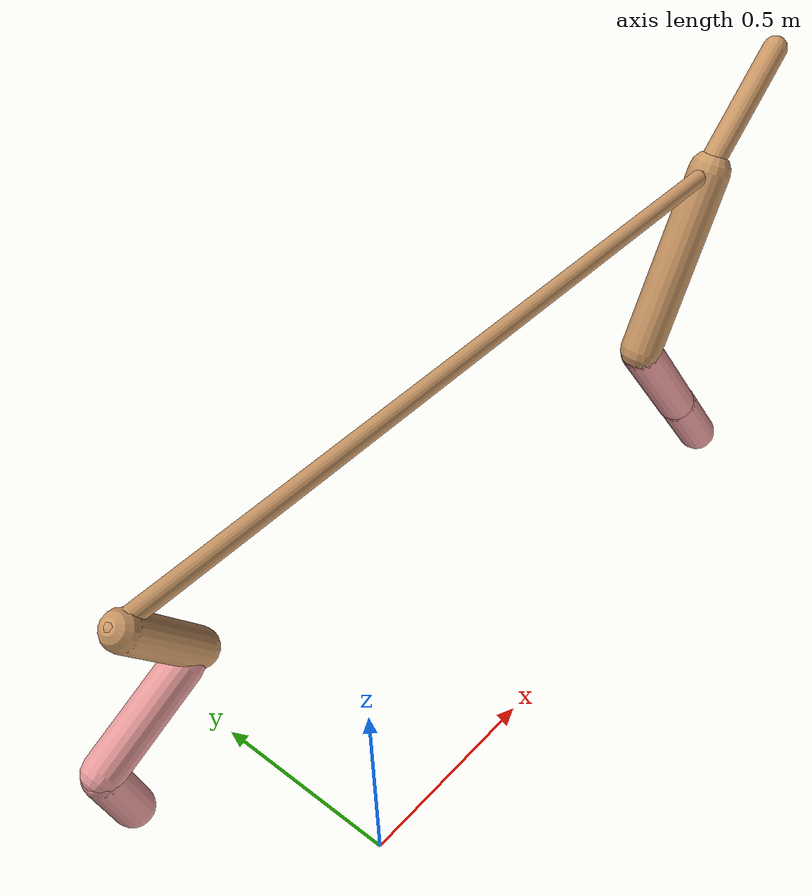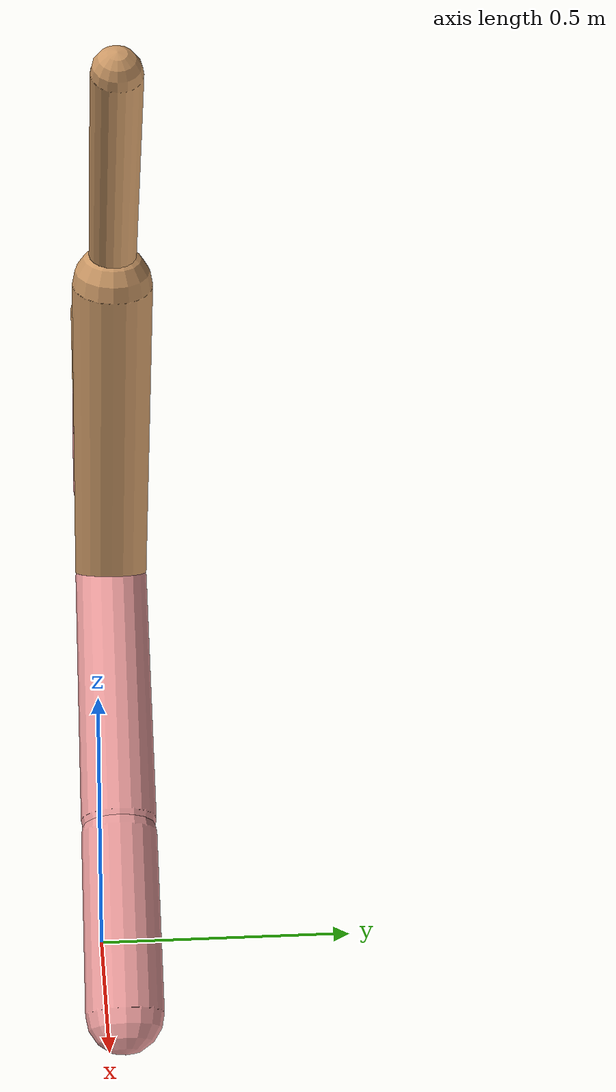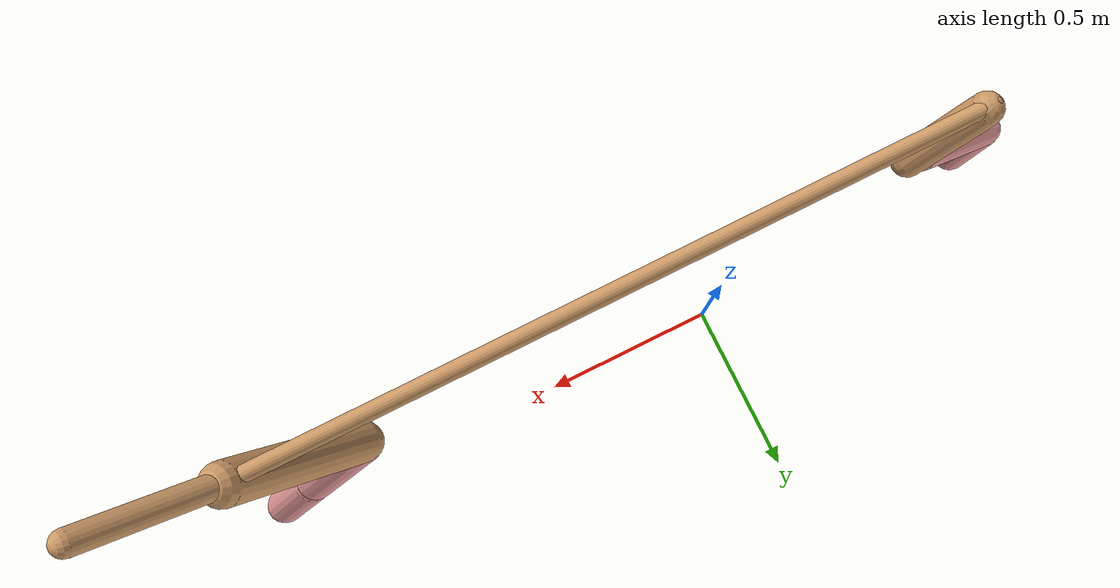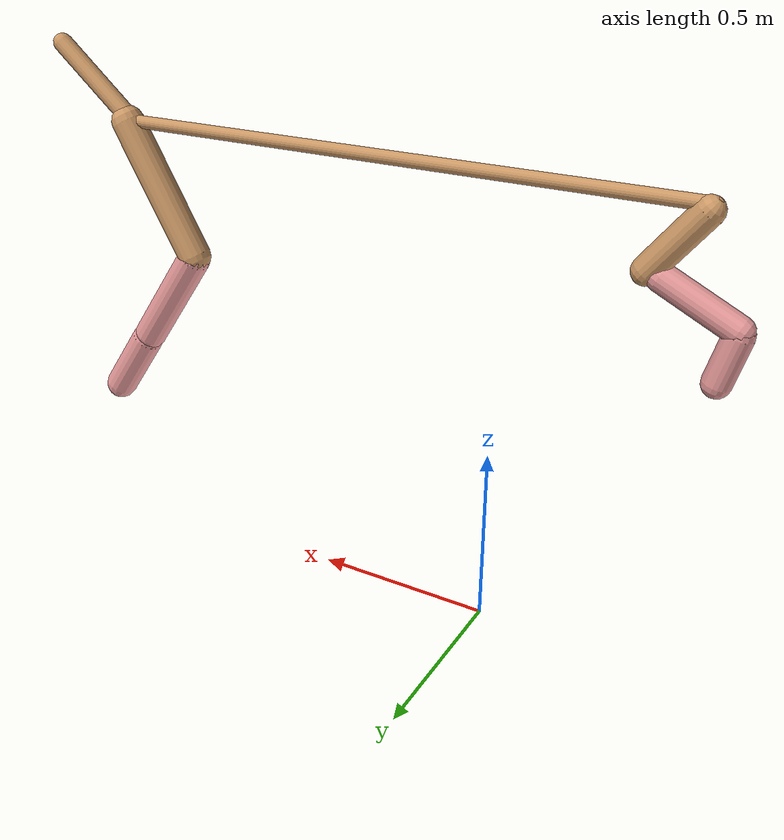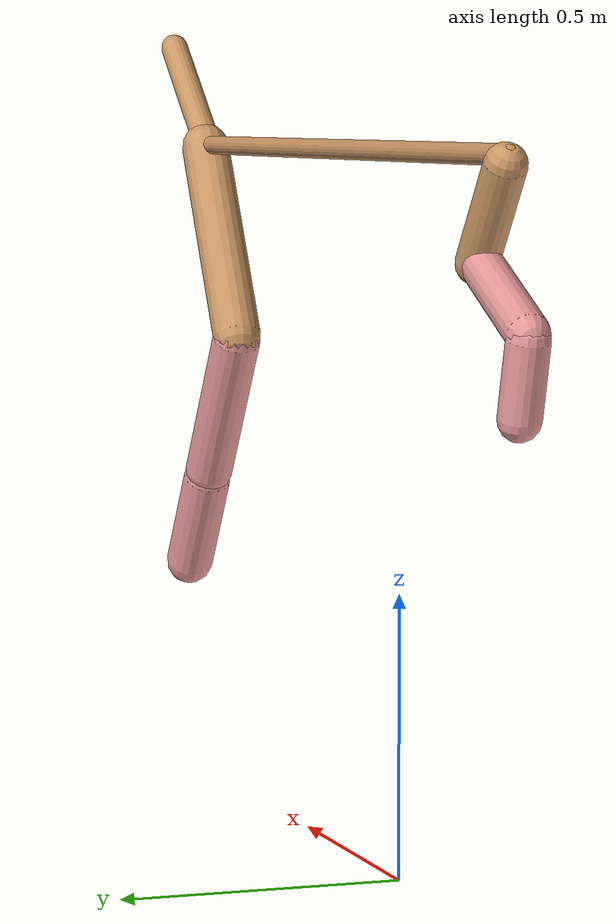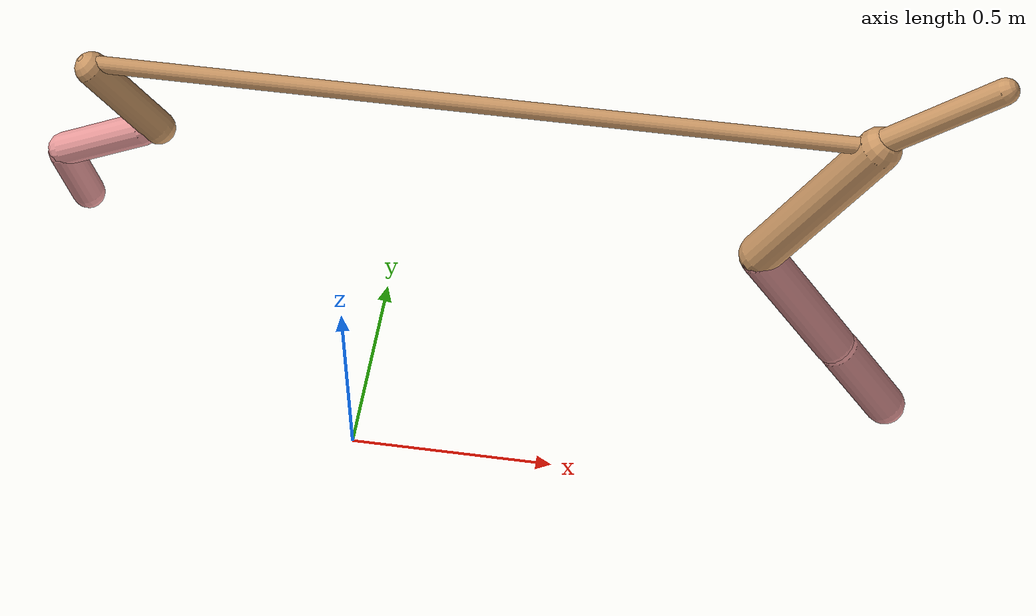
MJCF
<mujoco model="cheetah">
  <compiler angle="radian" coordinate="local" inertiafromgeom="true" settotalmass="14" />
  <default>
    <joint armature=".1" damping=".01" limited="true" solimplimit="0 .8 .03" solreflimit=".02 1" stiffness="8" />
    <geom conaffinity="0" condim="3" contype="1" friction="0.8 .1 .1" rgba="0.8 0.6 .4 1" solimp="0.0 0.8 0.01" solref="0.02 1" />
    <motor ctrllimited="true" ctrlrange="-1 1" />
  </default>
  <size nstack="300000" nuser_geom="1" />
  <option gravity="0 0 -9.81" timestep="0.01" />
  <worldbody>
    <body name="torso" pos="0.0 0.0 1.260923605653069">
      <joint armature="0" axis="1 0 0" damping="0" limited="false" name="ignorex" pos="0 0 0" stiffness="0" type="slide" />
      <joint armature="0" axis="0 0 1" damping="0" limited="false" name="ignorez" pos="0 0 0" stiffness="0" type="slide" />
      <joint armature="0" axis="0 1 0" damping="0" limited="false" name="ignorey" pos="0 0 0" stiffness="0" type="hinge" />
      <geom fromto="-0.5 0.0 0.0 1.154454727467459 0.0 0.0" name="torso" size="0.018066467880969477" type="capsule" />
      <geom axisangle="0 1 0 .87" name="head" pos="1.2544547274674591 0.0 0.1" size="0.027250790857505484 0.15" type="capsule" />

      <body name="bthigh" pos="-.5 0 0">
        <joint axis="0 1 0" damping="6" name="bthigh" pos="0 0 0" range="-.52 1.05" stiffness="240" type="hinge" />
        <geom axisangle="0 1 0 -3.8" name="bthigh" pos="0.0734775819030384 0.0 -0.0955208564739499" size="0.036389380170096686 0.10149999999999999" type="capsule" />
        <body name="bshin" pos="0.10695516380607678 0.0 -0.18104171294789978">
          <joint axis="0 1 0" damping="4.5" name="bshin" pos="0 0 0" range="-.785 .785" stiffness="180" type="hinge" />
          <geom axisangle="0 1 0 -2.03" name="bshin" pos="-0.0997507764050038 0.0 -0.0498753882025019" rgba="0.9 0.6 0.6 1" size="0.036389380170096686 0.105" type="capsule" />
          <body name="bfoot" pos="-0.1995015528100076 0.0 -0.0997507764050038">
            <joint axis="0 1 0" damping="3" name="bfoot" pos="0 0 0" range="-.4 .785" stiffness="120" type="hinge" />
            <geom axisangle="0 1 0 -.27" name="bfoot" pos="0.021667753813597694 0.0 -0.07005907066396588" rgba="0.9 0.6 0.6 1" size="0.036389380170096686 0.0658" type="capsule" />
            <inertial mass="10" />
          </body>
        </body>
      </body>
      <body name="fthigh" pos="1.154454727467459 0.0 0.0">
        <joint axis="0 1 0" damping="4.5" name="fthigh" pos="0 0 0" range="-1.5 0.8" stiffness="180" type="hinge" />
        <geom axisangle="0 1 0 .52" name="fthigh" pos="-0.10932030258577788 0.0 -0.18740623300419063" size="0.04675357935348999 0.2110364430458768" type="capsule" />
        <body name="fshin" pos="-0.21864060517155576 0.0 -0.37481246600838125">
          <joint axis="0 1 0" damping="3" name="fshin" pos="0 0 0" range="-1.2 1.1" stiffness="120" type="hinge" />
          <geom axisangle="0 1 0 -.6" name="fshin" pos="0.10141426787557337 0.0 -0.14041975552002467" rgba="0.9 0.6 0.6 1" size="0.04675357935348999 0.1681944583673905" type="capsule" />
          <body name="ffoot" pos="0.20282853575114673 0.0 -0.28083951104004934">
            <joint axis="0 1 0" damping="1.5" name="ffoot" pos="0 0 0" range="-3.1 -0.3" stiffness="60" type="hinge" />
            <geom axisangle="0 1 0 -.6" name="ffoot" pos="0.06720989419797965 0.0 -0.10454872430796837" rgba="0.9 0.6 0.6 1" size="0.04675357935348999 0.11107181212940884" type="capsule" />
            <inertial mass="10" />
          </body>
        </body>
      </body>
    </body>
  </worldbody>
  <actuator>
    <motor gear="120" joint="bthigh" name="bthigh" />
    <motor gear="90" joint="bshin" name="bshin" />
    <motor gear="60" joint="bfoot" name="bfoot" />
    <motor gear="120" joint="fthigh" name="fthigh" />
    <motor gear="60" joint="fshin" name="fshin" />
    <motor gear="30" joint="ffoot" name="ffoot" />
  </actuator>
</mujoco>
